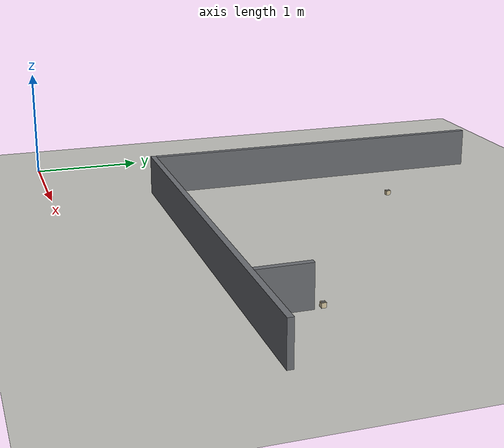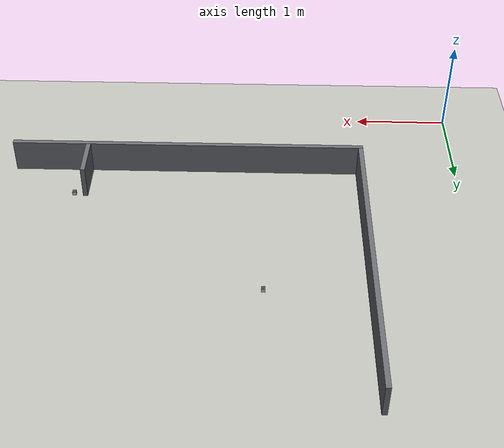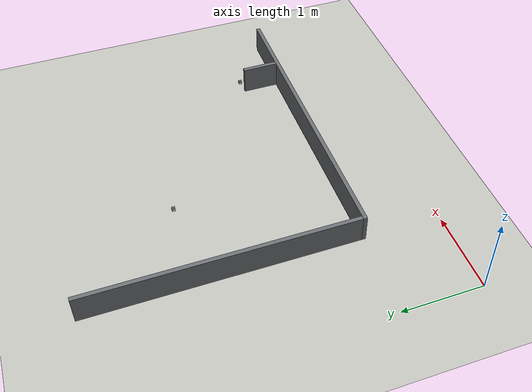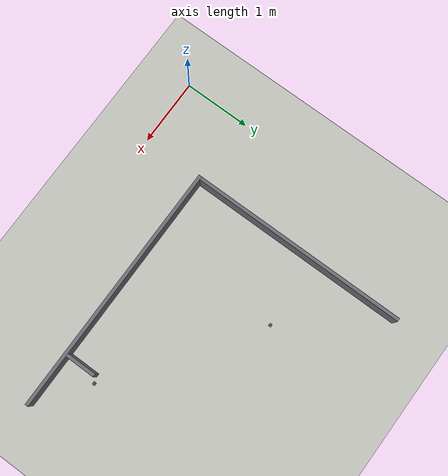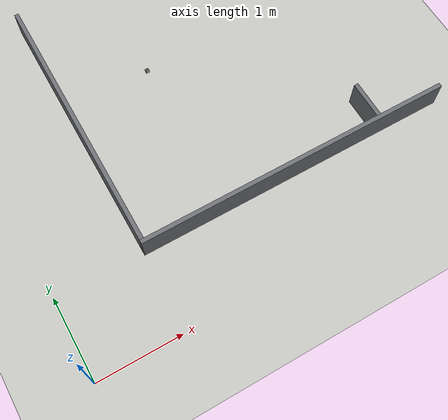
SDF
<sdf version="1.9">
 <world name="arena">
  <model name="floor">
   <static>true</static>
   <link name="ground">
    <collision name="ground">
     <geometry><plane><normal>0 0 1</normal><size>20 20</size></plane></geometry>
    </collision>
    <visual name="floor_appearance">
     <geometry><plane><normal>0 0 1</normal><size>20 20</size></plane></geometry>
     <material><ambient>0.75 0.75 0.73 1</ambient><diffuse>0.75 0.75 0.73 1</diffuse></material>
    </visual>
   </link>
  </model>
  <model name="map_wall_14">
   <static>true</static>
   <pose>1.06400 2.62000 0.18000 0 0 0.0000000</pose>
   <link name="body">
    <collision name="collision"><geometry><box><size>0.05000 3.25000 0.36000</size></box></geometry></collision>
    <visual name="appearance">
     <geometry><box><size>0.05000 3.25000 0.36000</size></box></geometry>
     <material><ambient>0.42 0.43 0.45 1</ambient><diffuse>0.42 0.43 0.45 1</diffuse></material>
    </visual>
   </link>
  </model>
  <model name="map_wall_15">
   <static>true</static>
   <pose>4.01400 1.22000 0.18000 0 0 0.0000000</pose>
   <link name="body">
    <collision name="collision"><geometry><box><size>0.05000 0.45000 0.36000</size></box></geometry></collision>
    <visual name="appearance">
     <geometry><box><size>0.05000 0.45000 0.36000</size></box></geometry>
     <material><ambient>0.42 0.43 0.45 1</ambient><diffuse>0.42 0.43 0.45 1</diffuse></material>
    </visual>
   </link>
  </model>
  <model name="map_wall_17">
   <static>true</static>
   <pose>2.93900 0.97000 0.18000 0 0 0.0000000</pose>
   <link name="body">
    <collision name="collision"><geometry><box><size>3.80000 0.05000 0.36000</size></box></geometry></collision>
    <visual name="appearance">
     <geometry><box><size>3.80000 0.05000 0.36000</size></box></geometry>
     <material><ambient>0.42 0.43 0.45 1</ambient><diffuse>0.42 0.43 0.45 1</diffuse></material>
    </visual>
   </link>
  </model>
  <model name="cube_1">
   <pose>4.12026 1.47678 0.07000 0 0 0</pose>
   <link name="body">
    <inertial>
     <mass>0.04</mass>
     <inertia>
      <ixx>0.000010667</ixx>
      <iyy>0.000010667</iyy>
      <izz>0.000010667</izz>
      <ixy>0</ixy>
      <ixz>0</ixz>
      <iyz>0</iyz>
     </inertia>
    </inertial>
    <collision name="cube">
     <geometry><box><size>0.04 0.04 0.04</size></box></geometry>
     <surface><friction><ode><mu>1.2</mu><mu2>1.2</mu2></ode></friction></surface>
    </collision>
    <visual name="cube_appearance">
     <geometry><box><size>0.04 0.04 0.04</size></box></geometry>
     <material><ambient>0.85 0.79 0.64 1</ambient><diffuse>0.85 0.79 0.64 1</diffuse></material>
    </visual>
    <visual name="tag_0_0">
     <pose>-0.0140 0.0140 0.0202 0 0 0</pose>
     <geometry><plane><normal>0 0 1</normal><size>0.004 0.004</size></plane></geometry>
     <material><ambient>0.01 0.01 0.01 1</ambient><diffuse>0.01 0.01 0.01 1</diffuse></material>
    </visual>
    <visual name="tag_0_1">
     <pose>-0.0100 0.0140 0.0202 0 0 0</pose>
     <geometry><plane><normal>0 0 1</normal><size>0.004 0.004</size></plane></geometry>
     <material><ambient>0.01 0.01 0.01 1</ambient><diffuse>0.01 0.01 0.01 1</diffuse></material>
    </visual>
    <visual name="tag_0_2">
     <pose>-0.0060 0.0140 0.0202 0 0 0</pose>
     <geometry><plane><normal>0 0 1</normal><size>0.004 0.004</size></plane></geometry>
     <material><ambient>0.01 0.01 0.01 1</ambient><diffuse>0.01 0.01 0.01 1</diffuse></material>
    </visual>
    <visual name="tag_0_3">
     <pose>-0.0020 0.0140 0.0202 0 0 0</pose>
     <geometry><plane><normal>0 0 1</normal><size>0.004 0.004</size></plane></geometry>
     <material><ambient>0.01 0.01 0.01 1</ambient><diffuse>0.01 0.01 0.01 1</diffuse></material>
    </visual>
    <visual name="tag_0_4">
     <pose>0.0020 0.0140 0.0202 0 0 0</pose>
     <geometry><plane><normal>0 0 1</normal><size>0.004 0.004</size></plane></geometry>
     <material><ambient>0.01 0.01 0.01 1</ambient><diffuse>0.01 0.01 0.01 1</diffuse></material>
    </visual>
    <visual name="tag_0_5">
     <pose>0.0060 0.0140 0.0202 0 0 0</pose>
     <geometry><plane><normal>0 0 1</normal><size>0.004 0.004</size></plane></geometry>
     <material><ambient>0.01 0.01 0.01 1</ambient><diffuse>0.01 0.01 0.01 1</diffuse></material>
    </visual>
    <visual name="tag_0_6">
     <pose>0.0100 0.0140 0.0202 0 0 0</pose>
     <geometry><plane><normal>0 0 1</normal><size>0.004 0.004</size></plane></geometry>
     <material><ambient>0.01 0.01 0.01 1</ambient><diffuse>0.01 0.01 0.01 1</diffuse></material>
    </visual>
    <visual name="tag_0_7">
     <pose>0.0140 0.0140 0.0202 0 0 0</pose>
     <geometry><plane><normal>0 0 1</normal><size>0.004 0.004</size></plane></geometry>
     <material><ambient>0.01 0.01 0.01 1</ambient><diffuse>0.01 0.01 0.01 1</diffuse></material>
    </visual>
    <visual name="tag_1_0">
     <pose>-0.0140 0.0100 0.0202 0 0 0</pose>
     <geometry><plane><normal>0 0 1</normal><size>0.004 0.004</size></plane></geometry>
     <material><ambient>0.01 0.01 0.01 1</ambient><diffuse>0.01 0.01 0.01 1</diffuse></material>
    </visual>
    <visual name="tag_1_1">
     <pose>-0.0100 0.0100 0.0202 0 0 0</pose>
     <geometry><plane><normal>0 0 1</normal><size>0.004 0.004</size></plane></geometry>
     <material><ambient>0.95 0.95 0.95 1</ambient><diffuse>0.95 0.95 0.95 1</diffuse></material>
    </visual>
    <visual name="tag_1_2">
     <pose>-0.0060 0.0100 0.0202 0 0 0</pose>
     <geometry><plane><normal>0 0 1</normal><size>0.004 0.004</size></plane></geometry>
     <material><ambient>0.01 0.01 0.01 1</ambient><diffuse>0.01 0.01 0.01 1</diffuse></material>
    </visual>
    <visual name="tag_1_3">
     <pose>-0.0020 0.0100 0.0202 0 0 0</pose>
     <geometry><plane><normal>0 0 1</normal><size>0.004 0.004</size></plane></geometry>
     <material><ambient>0.01 0.01 0.01 1</ambient><diffuse>0.01 0.01 0.01 1</diffuse></material>
    </visual>
    <visual name="tag_1_4">
     <pose>0.0020 0.0100 0.0202 0 0 0</pose>
     <geometry><plane><normal>0 0 1</normal><size>0.004 0.004</size></plane></geometry>
     <material><ambient>0.95 0.95 0.95 1</ambient><diffuse>0.95 0.95 0.95 1</diffuse></material>
    </visual>
    <visual name="tag_1_5">
     <pose>0.0060 0.0100 0.0202 0 0 0</pose>
     <geometry><plane><normal>0 0 1</normal><size>0.004 0.004</size></plane></geometry>
     <material><ambient>0.01 0.01 0.01 1</ambient><diffuse>0.01 0.01 0.01 1</diffuse></material>
    </visual>
    <visual name="tag_1_6">
     <pose>0.0100 0.0100 0.0202 0 0 0</pose>
     <geometry><plane><normal>0 0 1</normal><size>0.004 0.004</size></plane></geometry>
     <material><ambient>0.01 0.01 0.01 1</ambient><diffuse>0.01 0.01 0.01 1</diffuse></material>
    </visual>
    <visual name="tag_1_7">
     <pose>0.0140 0.0100 0.0202 0 0 0</pose>
     <geometry><plane><normal>0 0 1</normal><size>0.004 0.004</size></plane></geometry>
     <material><ambient>0.01 0.01 0.01 1</ambient><diffuse>0.01 0.01 0.01 1</diffuse></material>
    </visual>
    <visual name="tag_2_0">
     <pose>-0.0140 0.0060 0.0202 0 0 0</pose>
     <geometry><plane><normal>0 0 1</normal><size>0.004 0.004</size></plane></geometry>
     <material><ambient>0.01 0.01 0.01 1</ambient><diffuse>0.01 0.01 0.01 1</diffuse></material>
    </visual>
    <visual name="tag_2_1">
     <pose>-0.0100 0.0060 0.0202 0 0 0</pose>
     <geometry><plane><normal>0 0 1</normal><size>0.004 0.004</size></plane></geometry>
     <material><ambient>0.95 0.95 0.95 1</ambient><diffuse>0.95 0.95 0.95 1</diffuse></material>
    </visual>
    <visual name="tag_2_2">
     <pose>-0.0060 0.0060 0.0202 0 0 0</pose>
     <geometry><plane><normal>0 0 1</normal><size>0.004 0.004</size></plane></geometry>
     <material><ambient>0.01 0.01 0.01 1</ambient><diffuse>0.01 0.01 0.01 1</diffuse></material>
    </visual>
    <visual name="tag_2_3">
     <pose>-0.0020 0.0060 0.0202 0 0 0</pose>
     <geometry><plane><normal>0 0 1</normal><size>0.004 0.004</size></plane></geometry>
     <material><ambient>0.95 0.95 0.95 1</ambient><diffuse>0.95 0.95 0.95 1</diffuse></material>
    </visual>
    <visual name="tag_2_4">
     <pose>0.0020 0.0060 0.0202 0 0 0</pose>
     <geometry><plane><normal>0 0 1</normal><size>0.004 0.004</size></plane></geometry>
     <material><ambient>0.95 0.95 0.95 1</ambient><diffuse>0.95 0.95 0.95 1</diffuse></material>
    </visual>
    <visual name="tag_2_5">
     <pose>0.0060 0.0060 0.0202 0 0 0</pose>
     <geometry><plane><normal>0 0 1</normal><size>0.004 0.004</size></plane></geometry>
     <material><ambient>0.01 0.01 0.01 1</ambient><diffuse>0.01 0.01 0.01 1</diffuse></material>
    </visual>
    <visual name="tag_2_6">
     <pose>0.0100 0.0060 0.0202 0 0 0</pose>
     <geometry><plane><normal>0 0 1</normal><size>0.004 0.004</size></plane></geometry>
     <material><ambient>0.95 0.95 0.95 1</ambient><diffuse>0.95 0.95 0.95 1</diffuse></material>
    </visual>
    <visual name="tag_2_7">
     <pose>0.0140 0.0060 0.0202 0 0 0</pose>
     <geometry><plane><normal>0 0 1</normal><size>0.004 0.004</size></plane></geometry>
     <material><ambient>0.01 0.01 0.01 1</ambient><diffuse>0.01 0.01 0.01 1</diffuse></material>
    </visual>
    <visual name="tag_3_0">
     <pose>-0.0140 0.0020 0.0202 0 0 0</pose>
     <geometry><plane><normal>0 0 1</normal><size>0.004 0.004</size></plane></geometry>
     <material><ambient>0.01 0.01 0.01 1</ambient><diffuse>0.01 0.01 0.01 1</diffuse></material>
    </visual>
    <visual name="tag_3_1">
     <pose>-0.0100 0.0020 0.0202 0 0 0</pose>
     <geometry><plane><normal>0 0 1</normal><size>0.004 0.004</size></plane></geometry>
     <material><ambient>0.01 0.01 0.01 1</ambient><diffuse>0.01 0.01 0.01 1</diffuse></material>
    </visual>
    <visual name="tag_3_2">
     <pose>-0.0060 0.0020 0.0202 0 0 0</pose>
     <geometry><plane><normal>0 0 1</normal><size>0.004 0.004</size></plane></geometry>
     <material><ambient>0.01 0.01 0.01 1</ambient><diffuse>0.01 0.01 0.01 1</diffuse></material>
    </visual>
    <visual name="tag_3_3">
     <pose>-0.0020 0.0020 0.0202 0 0 0</pose>
     <geometry><plane><normal>0 0 1</normal><size>0.004 0.004</size></plane></geometry>
     <material><ambient>0.01 0.01 0.01 1</ambient><diffuse>0.01 0.01 0.01 1</diffuse></material>
    </visual>
    <visual name="tag_3_4">
     <pose>0.0020 0.0020 0.0202 0 0 0</pose>
     <geometry><plane><normal>0 0 1</normal><size>0.004 0.004</size></plane></geometry>
     <material><ambient>0.95 0.95 0.95 1</ambient><diffuse>0.95 0.95 0.95 1</diffuse></material>
    </visual>
    <visual name="tag_3_5">
     <pose>0.0060 0.0020 0.0202 0 0 0</pose>
     <geometry><plane><normal>0 0 1</normal><size>0.004 0.004</size></plane></geometry>
     <material><ambient>0.95 0.95 0.95 1</ambient><diffuse>0.95 0.95 0.95 1</diffuse></material>
    </visual>
    <visual name="tag_3_6">
     <pose>0.0100 0.0020 0.0202 0 0 0</pose>
     <geometry><plane><normal>0 0 1</normal><size>0.004 0.004</size></plane></geometry>
     <material><ambient>0.01 0.01 0.01 1</ambient><diffuse>0.01 0.01 0.01 1</diffuse></material>
    </visual>
    <visual name="tag_3_7">
     <pose>0.0140 0.0020 0.0202 0 0 0</pose>
     <geometry><plane><normal>0 0 1</normal><size>0.004 0.004</size></plane></geometry>
     <material><ambient>0.01 0.01 0.01 1</ambient><diffuse>0.01 0.01 0.01 1</diffuse></material>
    </visual>
    <visual name="tag_4_0">
     <pose>-0.0140 -0.0020 0.0202 0 0 0</pose>
     <geometry><plane><normal>0 0 1</normal><size>0.004 0.004</size></plane></geometry>
     <material><ambient>0.01 0.01 0.01 1</ambient><diffuse>0.01 0.01 0.01 1</diffuse></material>
    </visual>
    <visual name="tag_4_1">
     <pose>-0.0100 -0.0020 0.0202 0 0 0</pose>
     <geometry><plane><normal>0 0 1</normal><size>0.004 0.004</size></plane></geometry>
     <material><ambient>0.01 0.01 0.01 1</ambient><diffuse>0.01 0.01 0.01 1</diffuse></material>
    </visual>
    <visual name="tag_4_2">
     <pose>-0.0060 -0.0020 0.0202 0 0 0</pose>
     <geometry><plane><normal>0 0 1</normal><size>0.004 0.004</size></plane></geometry>
     <material><ambient>0.01 0.01 0.01 1</ambient><diffuse>0.01 0.01 0.01 1</diffuse></material>
    </visual>
    <visual name="tag_4_3">
     <pose>-0.0020 -0.0020 0.0202 0 0 0</pose>
     <geometry><plane><normal>0 0 1</normal><size>0.004 0.004</size></plane></geometry>
     <material><ambient>0.95 0.95 0.95 1</ambient><diffuse>0.95 0.95 0.95 1</diffuse></material>
    </visual>
    <visual name="tag_4_4">
     <pose>0.0020 -0.0020 0.0202 0 0 0</pose>
     <geometry><plane><normal>0 0 1</normal><size>0.004 0.004</size></plane></geometry>
     <material><ambient>0.95 0.95 0.95 1</ambient><diffuse>0.95 0.95 0.95 1</diffuse></material>
    </visual>
    <visual name="tag_4_5">
     <pose>0.0060 -0.0020 0.0202 0 0 0</pose>
     <geometry><plane><normal>0 0 1</normal><size>0.004 0.004</size></plane></geometry>
     <material><ambient>0.95 0.95 0.95 1</ambient><diffuse>0.95 0.95 0.95 1</diffuse></material>
    </visual>
    <visual name="tag_4_6">
     <pose>0.0100 -0.0020 0.0202 0 0 0</pose>
     <geometry><plane><normal>0 0 1</normal><size>0.004 0.004</size></plane></geometry>
     <material><ambient>0.95 0.95 0.95 1</ambient><diffuse>0.95 0.95 0.95 1</diffuse></material>
    </visual>
    <visual name="tag_4_7">
     <pose>0.0140 -0.0020 0.0202 0 0 0</pose>
     <geometry><plane><normal>0 0 1</normal><size>0.004 0.004</size></plane></geometry>
     <material><ambient>0.01 0.01 0.01 1</ambient><diffuse>0.01 0.01 0.01 1</diffuse></material>
    </visual>
    <visual name="tag_5_0">
     <pose>-0.0140 -0.0060 0.0202 0 0 0</pose>
     <geometry><plane><normal>0 0 1</normal><size>0.004 0.004</size></plane></geometry>
     <material><ambient>0.01 0.01 0.01 1</ambient><diffuse>0.01 0.01 0.01 1</diffuse></material>
    </visual>
    <visual name="tag_5_1">
     <pose>-0.0100 -0.0060 0.0202 0 0 0</pose>
     <geometry><plane><normal>0 0 1</normal><size>0.004 0.004</size></plane></geometry>
     <material><ambient>0.95 0.95 0.95 1</ambient><diffuse>0.95 0.95 0.95 1</diffuse></material>
    </visual>
    <visual name="tag_5_2">
     <pose>-0.0060 -0.0060 0.0202 0 0 0</pose>
     <geometry><plane><normal>0 0 1</normal><size>0.004 0.004</size></plane></geometry>
     <material><ambient>0.95 0.95 0.95 1</ambient><diffuse>0.95 0.95 0.95 1</diffuse></material>
    </visual>
    <visual name="tag_5_3">
     <pose>-0.0020 -0.0060 0.0202 0 0 0</pose>
     <geometry><plane><normal>0 0 1</normal><size>0.004 0.004</size></plane></geometry>
     <material><ambient>0.95 0.95 0.95 1</ambient><diffuse>0.95 0.95 0.95 1</diffuse></material>
    </visual>
    <visual name="tag_5_4">
     <pose>0.0020 -0.0060 0.0202 0 0 0</pose>
     <geometry><plane><normal>0 0 1</normal><size>0.004 0.004</size></plane></geometry>
     <material><ambient>0.01 0.01 0.01 1</ambient><diffuse>0.01 0.01 0.01 1</diffuse></material>
    </visual>
    <visual name="tag_5_5">
     <pose>0.0060 -0.0060 0.0202 0 0 0</pose>
     <geometry><plane><normal>0 0 1</normal><size>0.004 0.004</size></plane></geometry>
     <material><ambient>0.95 0.95 0.95 1</ambient><diffuse>0.95 0.95 0.95 1</diffuse></material>
    </visual>
    <visual name="tag_5_6">
     <pose>0.0100 -0.0060 0.0202 0 0 0</pose>
     <geometry><plane><normal>0 0 1</normal><size>0.004 0.004</size></plane></geometry>
     <material><ambient>0.01 0.01 0.01 1</ambient><diffuse>0.01 0.01 0.01 1</diffuse></material>
    </visual>
    <visual name="tag_5_7">
     <pose>0.0140 -0.0060 0.0202 0 0 0</pose>
     <geometry><plane><normal>0 0 1</normal><size>0.004 0.004</size></plane></geometry>
     <material><ambient>0.01 0.01 0.01 1</ambient><diffuse>0.01 0.01 0.01 1</diffuse></material>
    </visual>
    <visual name="tag_6_0">
     <pose>-0.0140 -0.0100 0.0202 0 0 0</pose>
     <geometry><plane><normal>0 0 1</normal><size>0.004 0.004</size></plane></geometry>
     <material><ambient>0.01 0.01 0.01 1</ambient><diffuse>0.01 0.01 0.01 1</diffuse></material>
    </visual>
    <visual name="tag_6_1">
     <pose>-0.0100 -0.0100 0.0202 0 0 0</pose>
     <geometry><plane><normal>0 0 1</normal><size>0.004 0.004</size></plane></geometry>
     <material><ambient>0.01 0.01 0.01 1</ambient><diffuse>0.01 0.01 0.01 1</diffuse></material>
    </visual>
    <visual name="tag_6_2">
     <pose>-0.0060 -0.0100 0.0202 0 0 0</pose>
     <geometry><plane><normal>0 0 1</normal><size>0.004 0.004</size></plane></geometry>
     <material><ambient>0.95 0.95 0.95 1</ambient><diffuse>0.95 0.95 0.95 1</diffuse></material>
    </visual>
    <visual name="tag_6_3">
     <pose>-0.0020 -0.0100 0.0202 0 0 0</pose>
     <geometry><plane><normal>0 0 1</normal><size>0.004 0.004</size></plane></geometry>
     <material><ambient>0.95 0.95 0.95 1</ambient><diffuse>0.95 0.95 0.95 1</diffuse></material>
    </visual>
    <visual name="tag_6_4">
     <pose>0.0020 -0.0100 0.0202 0 0 0</pose>
     <geometry><plane><normal>0 0 1</normal><size>0.004 0.004</size></plane></geometry>
     <material><ambient>0.01 0.01 0.01 1</ambient><diffuse>0.01 0.01 0.01 1</diffuse></material>
    </visual>
    <visual name="tag_6_5">
     <pose>0.0060 -0.0100 0.0202 0 0 0</pose>
     <geometry><plane><normal>0 0 1</normal><size>0.004 0.004</size></plane></geometry>
     <material><ambient>0.95 0.95 0.95 1</ambient><diffuse>0.95 0.95 0.95 1</diffuse></material>
    </visual>
    <visual name="tag_6_6">
     <pose>0.0100 -0.0100 0.0202 0 0 0</pose>
     <geometry><plane><normal>0 0 1</normal><size>0.004 0.004</size></plane></geometry>
     <material><ambient>0.95 0.95 0.95 1</ambient><diffuse>0.95 0.95 0.95 1</diffuse></material>
    </visual>
    <visual name="tag_6_7">
     <pose>0.0140 -0.0100 0.0202 0 0 0</pose>
     <geometry><plane><normal>0 0 1</normal><size>0.004 0.004</size></plane></geometry>
     <material><ambient>0.01 0.01 0.01 1</ambient><diffuse>0.01 0.01 0.01 1</diffuse></material>
    </visual>
    <visual name="tag_7_0">
     <pose>-0.0140 -0.0140 0.0202 0 0 0</pose>
     <geometry><plane><normal>0 0 1</normal><size>0.004 0.004</size></plane></geometry>
     <material><ambient>0.01 0.01 0.01 1</ambient><diffuse>0.01 0.01 0.01 1</diffuse></material>
    </visual>
    <visual name="tag_7_1">
     <pose>-0.0100 -0.0140 0.0202 0 0 0</pose>
     <geometry><plane><normal>0 0 1</normal><size>0.004 0.004</size></plane></geometry>
     <material><ambient>0.01 0.01 0.01 1</ambient><diffuse>0.01 0.01 0.01 1</diffuse></material>
    </visual>
    <visual name="tag_7_2">
     <pose>-0.0060 -0.0140 0.0202 0 0 0</pose>
     <geometry><plane><normal>0 0 1</normal><size>0.004 0.004</size></plane></geometry>
     <material><ambient>0.01 0.01 0.01 1</ambient><diffuse>0.01 0.01 0.01 1</diffuse></material>
    </visual>
    <visual name="tag_7_3">
     <pose>-0.0020 -0.0140 0.0202 0 0 0</pose>
     <geometry><plane><normal>0 0 1</normal><size>0.004 0.004</size></plane></geometry>
     <material><ambient>0.01 0.01 0.01 1</ambient><diffuse>0.01 0.01 0.01 1</diffuse></material>
    </visual>
    <visual name="tag_7_4">
     <pose>0.0020 -0.0140 0.0202 0 0 0</pose>
     <geometry><plane><normal>0 0 1</normal><size>0.004 0.004</size></plane></geometry>
     <material><ambient>0.01 0.01 0.01 1</ambient><diffuse>0.01 0.01 0.01 1</diffuse></material>
    </visual>
    <visual name="tag_7_5">
     <pose>0.0060 -0.0140 0.0202 0 0 0</pose>
     <geometry><plane><normal>0 0 1</normal><size>0.004 0.004</size></plane></geometry>
     <material><ambient>0.01 0.01 0.01 1</ambient><diffuse>0.01 0.01 0.01 1</diffuse></material>
    </visual>
    <visual name="tag_7_6">
     <pose>0.0100 -0.0140 0.0202 0 0 0</pose>
     <geometry><plane><normal>0 0 1</normal><size>0.004 0.004</size></plane></geometry>
     <material><ambient>0.01 0.01 0.01 1</ambient><diffuse>0.01 0.01 0.01 1</diffuse></material>
    </visual>
    <visual name="tag_7_7">
     <pose>0.0140 -0.0140 0.0202 0 0 0</pose>
     <geometry><plane><normal>0 0 1</normal><size>0.004 0.004</size></plane></geometry>
     <material><ambient>0.01 0.01 0.01 1</ambient><diffuse>0.01 0.01 0.01 1</diffuse></material>
    </visual>
   </link>
  </model>
  <model name="cube_13">
   <pose>2.10000 2.92000 0.13000 0 0 0</pose>
   <link name="body">
    <inertial>
     <mass>0.04</mass>
     <inertia>
      <ixx>0.000010667</ixx>
      <iyy>0.000010667</iyy>
      <izz>0.000010667</izz>
      <ixy>0</ixy>
      <ixz>0</ixz>
      <iyz>0</iyz>
     </inertia>
    </inertial>
    <collision name="cube">
     <geometry><box><size>0.04 0.04 0.04</size></box></geometry>
     <surface><friction><ode><mu>1.2</mu><mu2>1.2</mu2></ode></friction></surface>
    </collision>
    <visual name="cube_appearance">
     <geometry><box><size>0.04 0.04 0.04</size></box></geometry>
     <material><ambient>0.85 0.79 0.64 1</ambient><diffuse>0.85 0.79 0.64 1</diffuse></material>
    </visual>
    <visual name="tag_0_0">
     <pose>-0.0140 0.0140 0.0202 0 0 0</pose>
     <geometry><plane><normal>0 0 1</normal><size>0.004 0.004</size></plane></geometry>
     <material><ambient>0.01 0.01 0.01 1</ambient><diffuse>0.01 0.01 0.01 1</diffuse></material>
    </visual>
    <visual name="tag_0_1">
     <pose>-0.0100 0.0140 0.0202 0 0 0</pose>
     <geometry><plane><normal>0 0 1</normal><size>0.004 0.004</size></plane></geometry>
     <material><ambient>0.01 0.01 0.01 1</ambient><diffuse>0.01 0.01 0.01 1</diffuse></material>
    </visual>
    <visual name="tag_0_2">
     <pose>-0.0060 0.0140 0.0202 0 0 0</pose>
     <geometry><plane><normal>0 0 1</normal><size>0.004 0.004</size></plane></geometry>
     <material><ambient>0.01 0.01 0.01 1</ambient><diffuse>0.01 0.01 0.01 1</diffuse></material>
    </visual>
    <visual name="tag_0_3">
     <pose>-0.0020 0.0140 0.0202 0 0 0</pose>
     <geometry><plane><normal>0 0 1</normal><size>0.004 0.004</size></plane></geometry>
     <material><ambient>0.01 0.01 0.01 1</ambient><diffuse>0.01 0.01 0.01 1</diffuse></material>
    </visual>
    <visual name="tag_0_4">
     <pose>0.0020 0.0140 0.0202 0 0 0</pose>
     <geometry><plane><normal>0 0 1</normal><size>0.004 0.004</size></plane></geometry>
     <material><ambient>0.01 0.01 0.01 1</ambient><diffuse>0.01 0.01 0.01 1</diffuse></material>
    </visual>
    <visual name="tag_0_5">
     <pose>0.0060 0.0140 0.0202 0 0 0</pose>
     <geometry><plane><normal>0 0 1</normal><size>0.004 0.004</size></plane></geometry>
     <material><ambient>0.01 0.01 0.01 1</ambient><diffuse>0.01 0.01 0.01 1</diffuse></material>
    </visual>
    <visual name="tag_0_6">
     <pose>0.0100 0.0140 0.0202 0 0 0</pose>
     <geometry><plane><normal>0 0 1</normal><size>0.004 0.004</size></plane></geometry>
     <material><ambient>0.01 0.01 0.01 1</ambient><diffuse>0.01 0.01 0.01 1</diffuse></material>
    </visual>
    <visual name="tag_0_7">
     <pose>0.0140 0.0140 0.0202 0 0 0</pose>
     <geometry><plane><normal>0 0 1</normal><size>0.004 0.004</size></plane></geometry>
     <material><ambient>0.01 0.01 0.01 1</ambient><diffuse>0.01 0.01 0.01 1</diffuse></material>
    </visual>
    <visual name="tag_1_0">
     <pose>-0.0140 0.0100 0.0202 0 0 0</pose>
     <geometry><plane><normal>0 0 1</normal><size>0.004 0.004</size></plane></geometry>
     <material><ambient>0.01 0.01 0.01 1</ambient><diffuse>0.01 0.01 0.01 1</diffuse></material>
    </visual>
    <visual name="tag_1_1">
     <pose>-0.0100 0.0100 0.0202 0 0 0</pose>
     <geometry><plane><normal>0 0 1</normal><size>0.004 0.004</size></plane></geometry>
     <material><ambient>0.95 0.95 0.95 1</ambient><diffuse>0.95 0.95 0.95 1</diffuse></material>
    </visual>
    <visual name="tag_1_2">
     <pose>-0.0060 0.0100 0.0202 0 0 0</pose>
     <geometry><plane><normal>0 0 1</normal><size>0.004 0.004</size></plane></geometry>
     <material><ambient>0.95 0.95 0.95 1</ambient><diffuse>0.95 0.95 0.95 1</diffuse></material>
    </visual>
    <visual name="tag_1_3">
     <pose>-0.0020 0.0100 0.0202 0 0 0</pose>
     <geometry><plane><normal>0 0 1</normal><size>0.004 0.004</size></plane></geometry>
     <material><ambient>0.95 0.95 0.95 1</ambient><diffuse>0.95 0.95 0.95 1</diffuse></material>
    </visual>
    <visual name="tag_1_4">
     <pose>0.0020 0.0100 0.0202 0 0 0</pose>
     <geometry><plane><normal>0 0 1</normal><size>0.004 0.004</size></plane></geometry>
     <material><ambient>0.95 0.95 0.95 1</ambient><diffuse>0.95 0.95 0.95 1</diffuse></material>
    </visual>
    <visual name="tag_1_5">
     <pose>0.0060 0.0100 0.0202 0 0 0</pose>
     <geometry><plane><normal>0 0 1</normal><size>0.004 0.004</size></plane></geometry>
     <material><ambient>0.95 0.95 0.95 1</ambient><diffuse>0.95 0.95 0.95 1</diffuse></material>
    </visual>
    <visual name="tag_1_6">
     <pose>0.0100 0.0100 0.0202 0 0 0</pose>
     <geometry><plane><normal>0 0 1</normal><size>0.004 0.004</size></plane></geometry>
     <material><ambient>0.01 0.01 0.01 1</ambient><diffuse>0.01 0.01 0.01 1</diffuse></material>
    </visual>
    <visual name="tag_1_7">
     <pose>0.0140 0.0100 0.0202 0 0 0</pose>
     <geometry><plane><normal>0 0 1</normal><size>0.004 0.004</size></plane></geometry>
     <material><ambient>0.01 0.01 0.01 1</ambient><diffuse>0.01 0.01 0.01 1</diffuse></material>
    </visual>
    <visual name="tag_2_0">
     <pose>-0.0140 0.0060 0.0202 0 0 0</pose>
     <geometry><plane><normal>0 0 1</normal><size>0.004 0.004</size></plane></geometry>
     <material><ambient>0.01 0.01 0.01 1</ambient><diffuse>0.01 0.01 0.01 1</diffuse></material>
    </visual>
    <visual name="tag_2_1">
     <pose>-0.0100 0.0060 0.0202 0 0 0</pose>
     <geometry><plane><normal>0 0 1</normal><size>0.004 0.004</size></plane></geometry>
     <material><ambient>0.95 0.95 0.95 1</ambient><diffuse>0.95 0.95 0.95 1</diffuse></material>
    </visual>
    <visual name="tag_2_2">
     <pose>-0.0060 0.0060 0.0202 0 0 0</pose>
     <geometry><plane><normal>0 0 1</normal><size>0.004 0.004</size></plane></geometry>
     <material><ambient>0.01 0.01 0.01 1</ambient><diffuse>0.01 0.01 0.01 1</diffuse></material>
    </visual>
    <visual name="tag_2_3">
     <pose>-0.0020 0.0060 0.0202 0 0 0</pose>
     <geometry><plane><normal>0 0 1</normal><size>0.004 0.004</size></plane></geometry>
     <material><ambient>0.01 0.01 0.01 1</ambient><diffuse>0.01 0.01 0.01 1</diffuse></material>
    </visual>
    <visual name="tag_2_4">
     <pose>0.0020 0.0060 0.0202 0 0 0</pose>
     <geometry><plane><normal>0 0 1</normal><size>0.004 0.004</size></plane></geometry>
     <material><ambient>0.01 0.01 0.01 1</ambient><diffuse>0.01 0.01 0.01 1</diffuse></material>
    </visual>
    <visual name="tag_2_5">
     <pose>0.0060 0.0060 0.0202 0 0 0</pose>
     <geometry><plane><normal>0 0 1</normal><size>0.004 0.004</size></plane></geometry>
     <material><ambient>0.01 0.01 0.01 1</ambient><diffuse>0.01 0.01 0.01 1</diffuse></material>
    </visual>
    <visual name="tag_2_6">
     <pose>0.0100 0.0060 0.0202 0 0 0</pose>
     <geometry><plane><normal>0 0 1</normal><size>0.004 0.004</size></plane></geometry>
     <material><ambient>0.95 0.95 0.95 1</ambient><diffuse>0.95 0.95 0.95 1</diffuse></material>
    </visual>
    <visual name="tag_2_7">
     <pose>0.0140 0.0060 0.0202 0 0 0</pose>
     <geometry><plane><normal>0 0 1</normal><size>0.004 0.004</size></plane></geometry>
     <material><ambient>0.01 0.01 0.01 1</ambient><diffuse>0.01 0.01 0.01 1</diffuse></material>
    </visual>
    <visual name="tag_3_0">
     <pose>-0.0140 0.0020 0.0202 0 0 0</pose>
     <geometry><plane><normal>0 0 1</normal><size>0.004 0.004</size></plane></geometry>
     <material><ambient>0.01 0.01 0.01 1</ambient><diffuse>0.01 0.01 0.01 1</diffuse></material>
    </visual>
    <visual name="tag_3_1">
     <pose>-0.0100 0.0020 0.0202 0 0 0</pose>
     <geometry><plane><normal>0 0 1</normal><size>0.004 0.004</size></plane></geometry>
     <material><ambient>0.95 0.95 0.95 1</ambient><diffuse>0.95 0.95 0.95 1</diffuse></material>
    </visual>
    <visual name="tag_3_2">
     <pose>-0.0060 0.0020 0.0202 0 0 0</pose>
     <geometry><plane><normal>0 0 1</normal><size>0.004 0.004</size></plane></geometry>
     <material><ambient>0.95 0.95 0.95 1</ambient><diffuse>0.95 0.95 0.95 1</diffuse></material>
    </visual>
    <visual name="tag_3_3">
     <pose>-0.0020 0.0020 0.0202 0 0 0</pose>
     <geometry><plane><normal>0 0 1</normal><size>0.004 0.004</size></plane></geometry>
     <material><ambient>0.01 0.01 0.01 1</ambient><diffuse>0.01 0.01 0.01 1</diffuse></material>
    </visual>
    <visual name="tag_3_4">
     <pose>0.0020 0.0020 0.0202 0 0 0</pose>
     <geometry><plane><normal>0 0 1</normal><size>0.004 0.004</size></plane></geometry>
     <material><ambient>0.01 0.01 0.01 1</ambient><diffuse>0.01 0.01 0.01 1</diffuse></material>
    </visual>
    <visual name="tag_3_5">
     <pose>0.0060 0.0020 0.0202 0 0 0</pose>
     <geometry><plane><normal>0 0 1</normal><size>0.004 0.004</size></plane></geometry>
     <material><ambient>0.01 0.01 0.01 1</ambient><diffuse>0.01 0.01 0.01 1</diffuse></material>
    </visual>
    <visual name="tag_3_6">
     <pose>0.0100 0.0020 0.0202 0 0 0</pose>
     <geometry><plane><normal>0 0 1</normal><size>0.004 0.004</size></plane></geometry>
     <material><ambient>0.01 0.01 0.01 1</ambient><diffuse>0.01 0.01 0.01 1</diffuse></material>
    </visual>
    <visual name="tag_3_7">
     <pose>0.0140 0.0020 0.0202 0 0 0</pose>
     <geometry><plane><normal>0 0 1</normal><size>0.004 0.004</size></plane></geometry>
     <material><ambient>0.01 0.01 0.01 1</ambient><diffuse>0.01 0.01 0.01 1</diffuse></material>
    </visual>
    <visual name="tag_4_0">
     <pose>-0.0140 -0.0020 0.0202 0 0 0</pose>
     <geometry><plane><normal>0 0 1</normal><size>0.004 0.004</size></plane></geometry>
     <material><ambient>0.01 0.01 0.01 1</ambient><diffuse>0.01 0.01 0.01 1</diffuse></material>
    </visual>
    <visual name="tag_4_1">
     <pose>-0.0100 -0.0020 0.0202 0 0 0</pose>
     <geometry><plane><normal>0 0 1</normal><size>0.004 0.004</size></plane></geometry>
     <material><ambient>0.95 0.95 0.95 1</ambient><diffuse>0.95 0.95 0.95 1</diffuse></material>
    </visual>
    <visual name="tag_4_2">
     <pose>-0.0060 -0.0020 0.0202 0 0 0</pose>
     <geometry><plane><normal>0 0 1</normal><size>0.004 0.004</size></plane></geometry>
     <material><ambient>0.01 0.01 0.01 1</ambient><diffuse>0.01 0.01 0.01 1</diffuse></material>
    </visual>
    <visual name="tag_4_3">
     <pose>-0.0020 -0.0020 0.0202 0 0 0</pose>
     <geometry><plane><normal>0 0 1</normal><size>0.004 0.004</size></plane></geometry>
     <material><ambient>0.95 0.95 0.95 1</ambient><diffuse>0.95 0.95 0.95 1</diffuse></material>
    </visual>
    <visual name="tag_4_4">
     <pose>0.0020 -0.0020 0.0202 0 0 0</pose>
     <geometry><plane><normal>0 0 1</normal><size>0.004 0.004</size></plane></geometry>
     <material><ambient>0.95 0.95 0.95 1</ambient><diffuse>0.95 0.95 0.95 1</diffuse></material>
    </visual>
    <visual name="tag_4_5">
     <pose>0.0060 -0.0020 0.0202 0 0 0</pose>
     <geometry><plane><normal>0 0 1</normal><size>0.004 0.004</size></plane></geometry>
     <material><ambient>0.01 0.01 0.01 1</ambient><diffuse>0.01 0.01 0.01 1</diffuse></material>
    </visual>
    <visual name="tag_4_6">
     <pose>0.0100 -0.0020 0.0202 0 0 0</pose>
     <geometry><plane><normal>0 0 1</normal><size>0.004 0.004</size></plane></geometry>
     <material><ambient>0.95 0.95 0.95 1</ambient><diffuse>0.95 0.95 0.95 1</diffuse></material>
    </visual>
    <visual name="tag_4_7">
     <pose>0.0140 -0.0020 0.0202 0 0 0</pose>
     <geometry><plane><normal>0 0 1</normal><size>0.004 0.004</size></plane></geometry>
     <material><ambient>0.01 0.01 0.01 1</ambient><diffuse>0.01 0.01 0.01 1</diffuse></material>
    </visual>
    <visual name="tag_5_0">
     <pose>-0.0140 -0.0060 0.0202 0 0 0</pose>
     <geometry><plane><normal>0 0 1</normal><size>0.004 0.004</size></plane></geometry>
     <material><ambient>0.01 0.01 0.01 1</ambient><diffuse>0.01 0.01 0.01 1</diffuse></material>
    </visual>
    <visual name="tag_5_1">
     <pose>-0.0100 -0.0060 0.0202 0 0 0</pose>
     <geometry><plane><normal>0 0 1</normal><size>0.004 0.004</size></plane></geometry>
     <material><ambient>0.01 0.01 0.01 1</ambient><diffuse>0.01 0.01 0.01 1</diffuse></material>
    </visual>
    <visual name="tag_5_2">
     <pose>-0.0060 -0.0060 0.0202 0 0 0</pose>
     <geometry><plane><normal>0 0 1</normal><size>0.004 0.004</size></plane></geometry>
     <material><ambient>0.01 0.01 0.01 1</ambient><diffuse>0.01 0.01 0.01 1</diffuse></material>
    </visual>
    <visual name="tag_5_3">
     <pose>-0.0020 -0.0060 0.0202 0 0 0</pose>
     <geometry><plane><normal>0 0 1</normal><size>0.004 0.004</size></plane></geometry>
     <material><ambient>0.95 0.95 0.95 1</ambient><diffuse>0.95 0.95 0.95 1</diffuse></material>
    </visual>
    <visual name="tag_5_4">
     <pose>0.0020 -0.0060 0.0202 0 0 0</pose>
     <geometry><plane><normal>0 0 1</normal><size>0.004 0.004</size></plane></geometry>
     <material><ambient>0.01 0.01 0.01 1</ambient><diffuse>0.01 0.01 0.01 1</diffuse></material>
    </visual>
    <visual name="tag_5_5">
     <pose>0.0060 -0.0060 0.0202 0 0 0</pose>
     <geometry><plane><normal>0 0 1</normal><size>0.004 0.004</size></plane></geometry>
     <material><ambient>0.95 0.95 0.95 1</ambient><diffuse>0.95 0.95 0.95 1</diffuse></material>
    </visual>
    <visual name="tag_5_6">
     <pose>0.0100 -0.0060 0.0202 0 0 0</pose>
     <geometry><plane><normal>0 0 1</normal><size>0.004 0.004</size></plane></geometry>
     <material><ambient>0.95 0.95 0.95 1</ambient><diffuse>0.95 0.95 0.95 1</diffuse></material>
    </visual>
    <visual name="tag_5_7">
     <pose>0.0140 -0.0060 0.0202 0 0 0</pose>
     <geometry><plane><normal>0 0 1</normal><size>0.004 0.004</size></plane></geometry>
     <material><ambient>0.01 0.01 0.01 1</ambient><diffuse>0.01 0.01 0.01 1</diffuse></material>
    </visual>
    <visual name="tag_6_0">
     <pose>-0.0140 -0.0100 0.0202 0 0 0</pose>
     <geometry><plane><normal>0 0 1</normal><size>0.004 0.004</size></plane></geometry>
     <material><ambient>0.01 0.01 0.01 1</ambient><diffuse>0.01 0.01 0.01 1</diffuse></material>
    </visual>
    <visual name="tag_6_1">
     <pose>-0.0100 -0.0100 0.0202 0 0 0</pose>
     <geometry><plane><normal>0 0 1</normal><size>0.004 0.004</size></plane></geometry>
     <material><ambient>0.95 0.95 0.95 1</ambient><diffuse>0.95 0.95 0.95 1</diffuse></material>
    </visual>
    <visual name="tag_6_2">
     <pose>-0.0060 -0.0100 0.0202 0 0 0</pose>
     <geometry><plane><normal>0 0 1</normal><size>0.004 0.004</size></plane></geometry>
     <material><ambient>0.01 0.01 0.01 1</ambient><diffuse>0.01 0.01 0.01 1</diffuse></material>
    </visual>
    <visual name="tag_6_3">
     <pose>-0.0020 -0.0100 0.0202 0 0 0</pose>
     <geometry><plane><normal>0 0 1</normal><size>0.004 0.004</size></plane></geometry>
     <material><ambient>0.01 0.01 0.01 1</ambient><diffuse>0.01 0.01 0.01 1</diffuse></material>
    </visual>
    <visual name="tag_6_4">
     <pose>0.0020 -0.0100 0.0202 0 0 0</pose>
     <geometry><plane><normal>0 0 1</normal><size>0.004 0.004</size></plane></geometry>
     <material><ambient>0.01 0.01 0.01 1</ambient><diffuse>0.01 0.01 0.01 1</diffuse></material>
    </visual>
    <visual name="tag_6_5">
     <pose>0.0060 -0.0100 0.0202 0 0 0</pose>
     <geometry><plane><normal>0 0 1</normal><size>0.004 0.004</size></plane></geometry>
     <material><ambient>0.95 0.95 0.95 1</ambient><diffuse>0.95 0.95 0.95 1</diffuse></material>
    </visual>
    <visual name="tag_6_6">
     <pose>0.0100 -0.0100 0.0202 0 0 0</pose>
     <geometry><plane><normal>0 0 1</normal><size>0.004 0.004</size></plane></geometry>
     <material><ambient>0.01 0.01 0.01 1</ambient><diffuse>0.01 0.01 0.01 1</diffuse></material>
    </visual>
    <visual name="tag_6_7">
     <pose>0.0140 -0.0100 0.0202 0 0 0</pose>
     <geometry><plane><normal>0 0 1</normal><size>0.004 0.004</size></plane></geometry>
     <material><ambient>0.01 0.01 0.01 1</ambient><diffuse>0.01 0.01 0.01 1</diffuse></material>
    </visual>
    <visual name="tag_7_0">
     <pose>-0.0140 -0.0140 0.0202 0 0 0</pose>
     <geometry><plane><normal>0 0 1</normal><size>0.004 0.004</size></plane></geometry>
     <material><ambient>0.01 0.01 0.01 1</ambient><diffuse>0.01 0.01 0.01 1</diffuse></material>
    </visual>
    <visual name="tag_7_1">
     <pose>-0.0100 -0.0140 0.0202 0 0 0</pose>
     <geometry><plane><normal>0 0 1</normal><size>0.004 0.004</size></plane></geometry>
     <material><ambient>0.01 0.01 0.01 1</ambient><diffuse>0.01 0.01 0.01 1</diffuse></material>
    </visual>
    <visual name="tag_7_2">
     <pose>-0.0060 -0.0140 0.0202 0 0 0</pose>
     <geometry><plane><normal>0 0 1</normal><size>0.004 0.004</size></plane></geometry>
     <material><ambient>0.01 0.01 0.01 1</ambient><diffuse>0.01 0.01 0.01 1</diffuse></material>
    </visual>
    <visual name="tag_7_3">
     <pose>-0.0020 -0.0140 0.0202 0 0 0</pose>
     <geometry><plane><normal>0 0 1</normal><size>0.004 0.004</size></plane></geometry>
     <material><ambient>0.01 0.01 0.01 1</ambient><diffuse>0.01 0.01 0.01 1</diffuse></material>
    </visual>
    <visual name="tag_7_4">
     <pose>0.0020 -0.0140 0.0202 0 0 0</pose>
     <geometry><plane><normal>0 0 1</normal><size>0.004 0.004</size></plane></geometry>
     <material><ambient>0.01 0.01 0.01 1</ambient><diffuse>0.01 0.01 0.01 1</diffuse></material>
    </visual>
    <visual name="tag_7_5">
     <pose>0.0060 -0.0140 0.0202 0 0 0</pose>
     <geometry><plane><normal>0 0 1</normal><size>0.004 0.004</size></plane></geometry>
     <material><ambient>0.01 0.01 0.01 1</ambient><diffuse>0.01 0.01 0.01 1</diffuse></material>
    </visual>
    <visual name="tag_7_6">
     <pose>0.0100 -0.0140 0.0202 0 0 0</pose>
     <geometry><plane><normal>0 0 1</normal><size>0.004 0.004</size></plane></geometry>
     <material><ambient>0.01 0.01 0.01 1</ambient><diffuse>0.01 0.01 0.01 1</diffuse></material>
    </visual>
    <visual name="tag_7_7">
     <pose>0.0140 -0.0140 0.0202 0 0 0</pose>
     <geometry><plane><normal>0 0 1</normal><size>0.004 0.004</size></plane></geometry>
     <material><ambient>0.01 0.01 0.01 1</ambient><diffuse>0.01 0.01 0.01 1</diffuse></material>
    </visual>
   </link>
  </model>
 </world>
</sdf>
